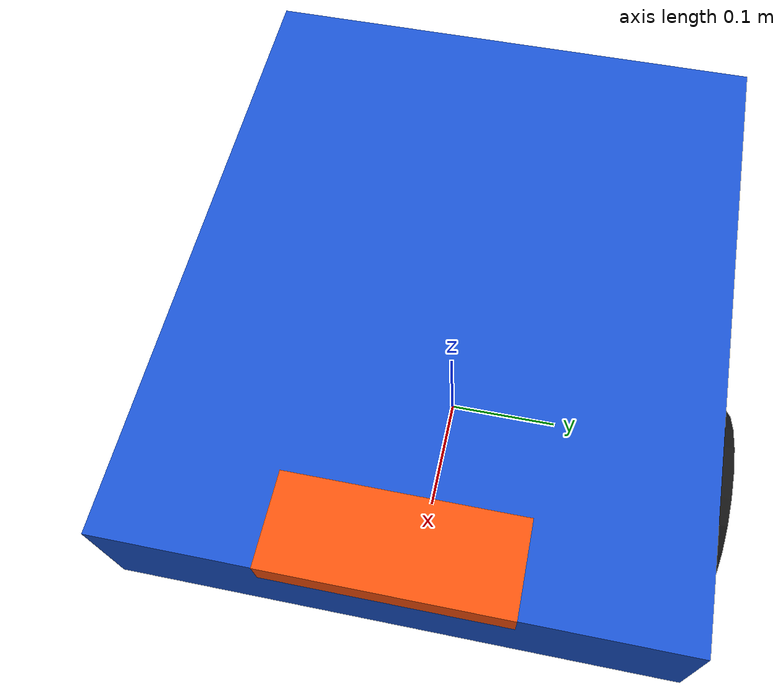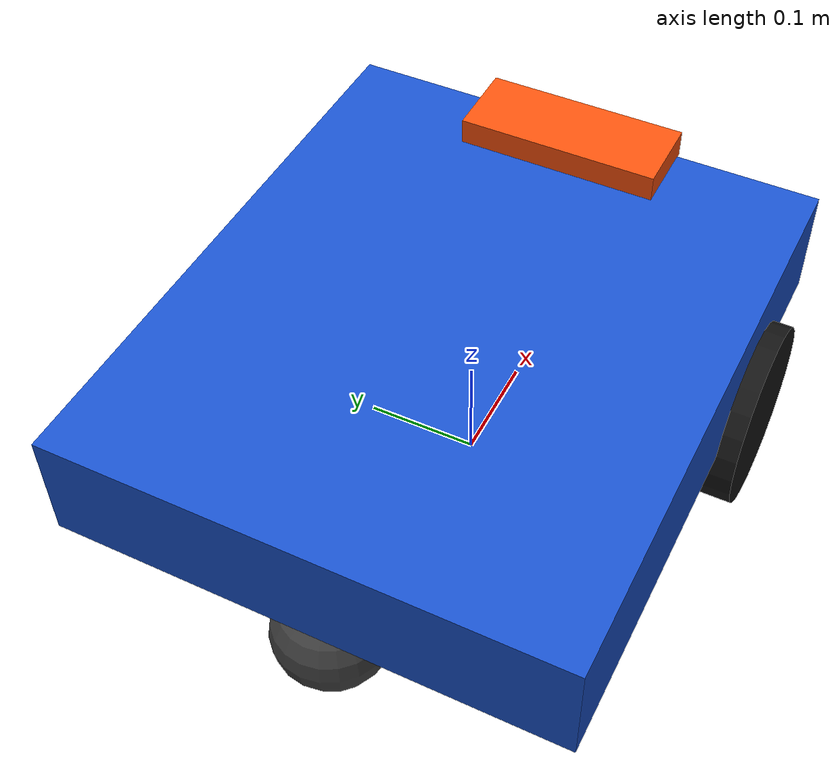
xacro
<?xml version="1.0"?>
<!--
  TF and visualisation description for robot_state_publisher, rendered from
  the same config/robot.yaml as the Gazebo model, so the published frames
  always match the simulated body.
-->
<robot name="climbot" xmlns:xacro="http://www.ros.org/wiki/xacro">
  <xacro:arg name="base_length" default="0.52"/>
  <xacro:arg name="base_width" default="0.44"/>
  <xacro:arg name="base_thickness" default="0.10"/>
  <xacro:arg name="base_mass" default="12.0"/>
  <xacro:arg name="base_x" default="-0.03"/>
  <xacro:arg name="base_y" default="0.0"/>
  <xacro:arg name="base_z" default="0.15"/>
  <xacro:arg name="wheel_radius" default="0.08"/>
  <xacro:arg name="wheel_width" default="0.045"/>
  <xacro:arg name="wheel_mass" default="1.0"/>
  <xacro:arg name="wheel_axle_x" default="0.08"/>
  <xacro:arg name="wheel_separation" default="0.43"/>
  <xacro:arg name="caster_radius" default="0.05"/>
  <xacro:arg name="caster_mass" default="0.5"/>
  <xacro:arg name="caster_x" default="-0.25"/>

  <xacro:property name="length" value="$(arg base_length)"/>
  <xacro:property name="width" value="$(arg base_width)"/>
  <xacro:property name="thickness" value="$(arg base_thickness)"/>
  <xacro:property name="base_mass" value="$(arg base_mass)"/>
  <xacro:property name="base_x" value="$(arg base_x)"/>
  <xacro:property name="base_y" value="$(arg base_y)"/>
  <xacro:property name="base_z" value="$(arg base_z)"/>
  <xacro:property name="wheel_radius" value="$(arg wheel_radius)"/>
  <xacro:property name="wheel_width" value="$(arg wheel_width)"/>
  <xacro:property name="wheel_mass" value="$(arg wheel_mass)"/>
  <xacro:property name="caster_radius" value="$(arg caster_radius)"/>
  <xacro:property name="caster_mass" value="$(arg caster_mass)"/>
  <xacro:property name="half_track" value="${$(arg wheel_separation) / 2.0}"/>

  <xacro:property name="wheel_offset_x" value="$(arg wheel_axle_x)"/>
  <xacro:property name="wheel_offset_z" value="${wheel_radius}"/>
  <xacro:property name="caster_offset_x" value="$(arg caster_x)"/>
  <xacro:property name="caster_offset_z" value="${caster_radius}"/>

  <material name="body_blue">
    <color rgba="0.10 0.32 0.80 1"/>
  </material>
  <material name="marker_orange">
    <color rgba="1.0 0.32 0.05 1"/>
  </material>
  <material name="wheel_black">
    <color rgba="0.08 0.08 0.08 1"/>
  </material>
  <material name="caster_grey">
    <color rgba="0.25 0.25 0.25 1"/>
  </material>

  <xacro:macro name="drive_wheel" params="side sign">
    <link name="${side}_wheel_link">
      <inertial>
        <mass value="${wheel_mass}"/>
        <inertia
          ixx="${wheel_mass * (3.0 * wheel_radius * wheel_radius + wheel_width * wheel_width) / 12.0}"
          iyy="${wheel_mass * (3.0 * wheel_radius * wheel_radius + wheel_width * wheel_width) / 12.0}"
          izz="${wheel_mass * wheel_radius * wheel_radius / 2.0}"
          ixy="0" ixz="0" iyz="0"/>
      </inertial>
      <visual>
        <geometry>
          <cylinder radius="${wheel_radius}" length="${wheel_width}"/>
        </geometry>
        <material name="wheel_black"/>
      </visual>
      <collision>
        <geometry>
          <cylinder radius="${wheel_radius}" length="${wheel_width}"/>
        </geometry>
      </collision>
    </link>

    <joint name="${side}_wheel_joint" type="continuous">
      <parent link="base_link"/>
      <child link="${side}_wheel_link"/>
      <origin xyz="${wheel_offset_x} ${sign * half_track} ${wheel_offset_z}"
              rpy="1.57079632679 0 0"/>
      <!-- The roll above sends the wheel's local +Z along the model's -Y, so
           the axle that the Gazebo model states as model +Y is -Z here. -->
      <axis xyz="0 0 -1"/>
    </joint>
  </xacro:macro>

  <link name="base_link">
    <inertial>
      <origin xyz="${base_x} ${base_y} ${base_z}"/>
      <mass value="${base_mass}"/>
      <inertia
        ixx="${base_mass * (width * width + thickness * thickness) / 12.0}"
        iyy="${base_mass * (length * length + thickness * thickness) / 12.0}"
        izz="${base_mass * (length * length + width * width) / 12.0}"
        ixy="0" ixz="0" iyz="0"/>
    </inertial>
    <visual>
      <origin xyz="${base_x} ${base_y} ${base_z}"/>
      <geometry>
        <box size="${length} ${width} ${thickness}"/>
      </geometry>
      <material name="body_blue"/>
    </visual>
    <visual>
      <origin xyz="${base_x + length / 2.0 - 0.03} ${base_y}
                   ${base_z + thickness / 2.0 + 0.011}"/>
      <geometry>
        <box size="0.07 ${width * 0.41} 0.025"/>
      </geometry>
      <material name="marker_orange"/>
    </visual>
    <collision>
      <origin xyz="${base_x} ${base_y} ${base_z}"/>
      <geometry>
        <box size="${length} ${width} ${thickness}"/>
      </geometry>
    </collision>
  </link>

  <!-- The IMU is co-located with base_link, so this frame is coincident
       with it. It exists so an offset mount only needs robot.yaml changed. -->
  <link name="imu_link"/>
  <joint name="imu_joint" type="fixed">
    <parent link="base_link"/>
    <child link="imu_link"/>
    <origin xyz="0 0 0" rpy="0 0 0"/>
  </joint>

  <xacro:drive_wheel side="left" sign="1"/>
  <xacro:drive_wheel side="right" sign="-1"/>

  <link name="caster_ball_link">
    <inertial>
      <mass value="${caster_mass}"/>
      <inertia ixx="${0.4 * caster_mass * caster_radius * caster_radius}"
               iyy="${0.4 * caster_mass * caster_radius * caster_radius}"
               izz="${0.4 * caster_mass * caster_radius * caster_radius}"
               ixy="0" ixz="0" iyz="0"/>
    </inertial>
    <visual>
      <geometry>
        <sphere radius="${caster_radius}"/>
      </geometry>
      <material name="caster_grey"/>
    </visual>
    <collision>
      <geometry>
        <sphere radius="${caster_radius}"/>
      </geometry>
    </collision>
  </link>

  <!-- URDF has no ball joint. The caster's own spin drives nothing further
       down the tree, so a fixed frame at its centre is enough for TF. -->
  <joint name="caster_ball_joint" type="fixed">
    <parent link="base_link"/>
    <child link="caster_ball_link"/>
    <origin xyz="${caster_offset_x} 0 ${caster_offset_z}" rpy="0 0 0"/>
  </joint>
</robot>
